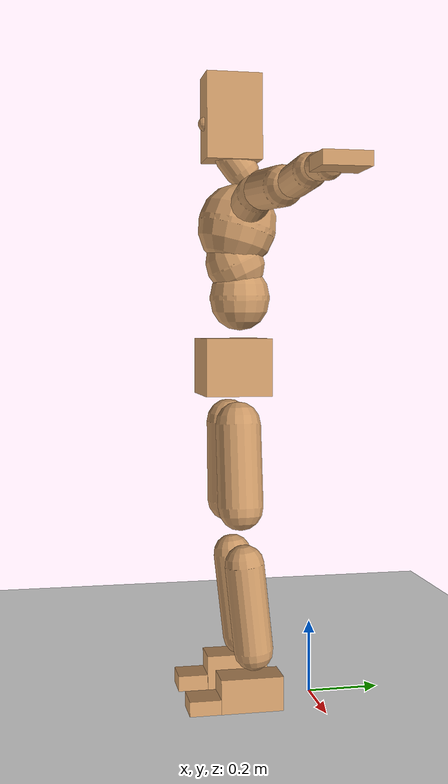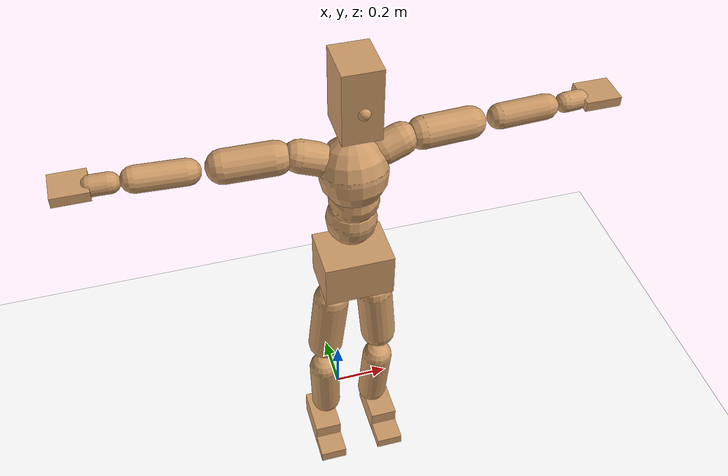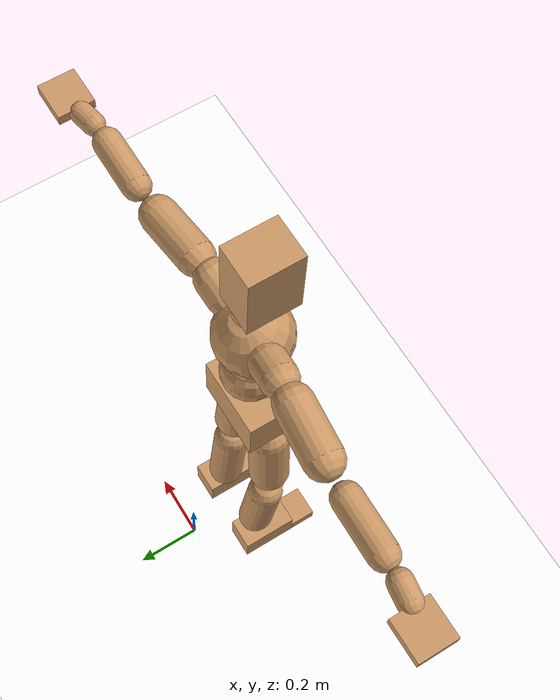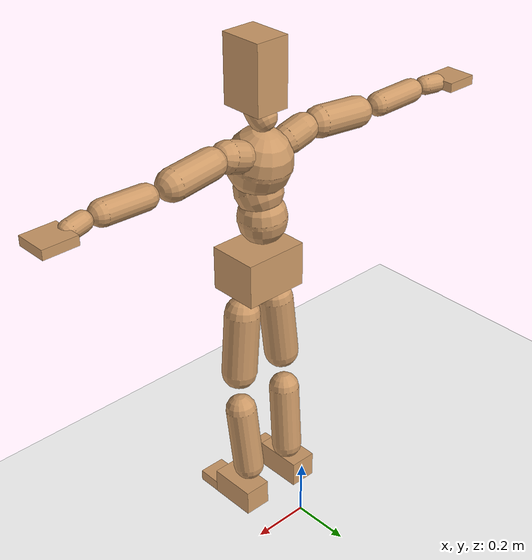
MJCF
<mujoco model="humanoid">
  <option integrator="implicitfast" />

  <visual>
    <global offwidth="1280" offheight="960" />
    <headlight active="1" ambient="0.34 0.34 0.34" diffuse="0.5 0.5 0.5" />
  </visual>

  <default>
    <joint damping="2" stiffness="2" armature="0.01" limited="true" solimplimit="0 .99 .01" />
    <geom condim="1" friction="0.7 0.005 0.0001" solimp=".99 .99 .003" solref="0.015 1" margin="0.001" rgba="0.8 0.6 .4 1" />
    <default class="smplcontact">
      <geom condim="3" friction="1. 0.005 0.0001" solref="0.015 1" solimp="0.98 0.98 0.001" priority="1" />
    </default>
    <default class="stiff_medium">
      <joint stiffness="10" />
    </default>
    <default class="stiff_medium_higher">
      <joint stiffness="50" />
    </default>
    <default class="stiff_high">
      <joint stiffness="100" />
    </default>
  </default>

  <asset>
    <texture type="skybox" builtin="gradient" rgb1="0.99 0.99 0.99" rgb2="0.608 0.828 0.892" width="100" />
    <texture builtin="flat" height="1278" mark="cross" markrgb="1 1 1" name="texgeom" random="0.01" rgb1="0.8 0.6 0.4" rgb2="0.8 0.6 0.4" type="cube" width="127" />
    <texture name="texplane" type="2d" builtin="checker" markrgb="1 1 1" rgb1="0.756 0.772 0.76" rgb2="0.6 0.6 0.6" width="100" height="100" />
    <material name="MatPlane" reflectance="0.5" texture="texplane" texrepeat="1 1" texuniform="true" />
    <material name="geom" texture="texgeom" texuniform="true" />
  </asset>

  <worldbody>
    <light name="tracking_light" pos="0 0 7" dir="0 0 -1" directional="true" cutoff="100" exponent="1" diffuse="1 1 1" specular="0.1 0.1 0.1" mode="trackcom" />
    <camera name="back" pos="0 3 2.4" xyaxes="-1 0 0 0 -1 2" mode="trackcom" />
    <camera name="side" pos="-3 0 2.4" xyaxes="0 -1 0 1 0 2" mode="trackcom" />
    <camera name="front_side" pos="-2.8 -2.8 0.8" xyaxes="0.5 -0.5 0 0.1 0.1 1" mode="trackcom" />
    <geom condim="3" name="floor" pos="0 0 0" rgba="1 1 1 1" size="100 100 .2" type="plane" material="MatPlane" />
    <body name="Pelvis" pos="-0.0018 -0.2233 0.9367" euler="90 0 0">
      <site name="Pelvis" size="0.01" />
      <freejoint name="Pelvis" />
      <geom type="box" pos="-0.0000 -0.0121 -0.0055" size="0.114917 0.077615 0.089225" quat="1.0000 0.0000 0.0000 0.0000" density="3165.830099" name="Pelvis" />
      <body name="L_Hip" pos="0.0695 -0.0914 -0.0068">
        <joint name="L_Hip_x" type="hinge" pos="0 0 0" axis="1 0 0" stiffness="10.0" range="-160.0 22.92" class="stiff_medium" damping="15.0" armature="0.010000000000000002"/>
        <joint name="L_Hip_y" type="hinge" pos="0 0 0" axis="0 1 0" stiffness="10.0" range="-70.0 70.0" class="stiff_medium" damping="10.000000000000002" armature="0.010000000000000005"/>
        <joint name="L_Hip_z" type="hinge" pos="0 0 0" axis="0 0 1" stiffness="10.0" range="-28.65 90.0" class="stiff_medium" damping="10.0" armature="0.01"/>
        <geom type="capsule" density="2040.816327" fromto="0.0069 -0.075 -0.0009 0.0274 -0.3002 -0.0036" size="0.0615" name="L_Hip" />
        <body name="L_Knee" pos="0.0343 -0.3752 -0.0045">
          <joint name="L_Knee_x" type="hinge" pos="0 0 0" axis="1 0 0" range="-5.16 171.89" damping="8.000000000000004" armature="0.010000000000000009" stiffness="2.0"/>
          <joint name="L_Knee_y" type="hinge" pos="0 0 0" axis="0 1 0" range="-4.58 6.88" damping="8.000000000000004" armature="0.01000000000000001" stiffness="2.0"/>
          <joint name="L_Knee_z" type="hinge" pos="0 0 0" axis="0 0 1" range="-6.88 4.58" damping="8.0" armature="0.01" stiffness="2.0"/>
          <geom type="capsule" density="1234.567901" fromto="-0.0027 -0.0796 -0.0087 -0.0109 -0.3184 -0.035" size="0.0541" name="L_Knee" />
          <body name="L_Ankle" pos="-0.0136 -0.398 -0.0437">
            <joint name="L_Ankle_x" type="hinge" pos="0 0 0" axis="1 0 0" range="-45.84 45.84" class="stiff_medium" damping="6.000000000000041" armature="0.010000000000000137" stiffness="10.0"/>
            <joint name="L_Ankle_y" type="hinge" pos="0 0 0" axis="0 1 0" range="-74.48 22.92" class="stiff_medium" damping="3.000000000000001" armature="0.010000000000000005" stiffness="10.0"/>
            <joint name="L_Ankle_z" type="hinge" pos="0 0 0" axis="0 0 1" range="-4.58 4.58" class="stiff_medium" damping="5.999999999999931" armature="0.009999999999999771" stiffness="10.0"/>
            <geom type="box" pos="0.0233 -0.0239 0.0242" size="0.0483 0.0464 0.085" quat="1.0000 0.0000 0.0000 0.0000" density="449.071558" name="L_Ankle" class="smplcontact" />
            <body name="L_Toe" pos="0.0264 -0.0558 0.1193">
              <joint name="L_Toe_x" type="hinge" pos="0 0 0" axis="1 0 0" range="-91.67 22.92" armature="0.009999999999999216" damping="1.9999999999999214" stiffness="2.0"/>
              <joint name="L_Toe_y" type="hinge" pos="0 0 0" axis="0 1 0" range="-4.58 4.58" armature="0.01" damping="2.0" stiffness="2.0"/>
              <joint name="L_Toe_z" type="hinge" pos="0 0 0" axis="0 0 1" range="-4.58 4.58" armature="0.009999999999999912" damping="1.9999999999999911" stiffness="2.0"/>
              <geom type="box" pos="-0.003 0.0055 0.0248" size="0.0478 0.02 0.0496" quat="1.0000 0.0000 0.0000 0.0000" density="423.206892" name="L_Toe" class="smplcontact" />
            </body>
          </body>
        </body>
      </body>
      <body name="R_Hip" pos="-0.0677 -0.0905 -0.0043">
        <joint name="R_Hip_x" type="hinge" pos="0 0 0" axis="1 0 0" stiffness="10.0" range="-160.0 22.92" class="stiff_medium" damping="15.0" armature="0.010000000000000002"/>
        <joint name="R_Hip_y" type="hinge" pos="0 0 0" axis="0 1 0" stiffness="10.0" range="-70.0 70.0" class="stiff_medium" damping="10.000000000000002" armature="0.010000000000000005"/>
        <joint name="R_Hip_z" type="hinge" pos="0 0 0" axis="0 0 1" stiffness="10.0" range="-90.0 28.65" class="stiff_medium" damping="10.0" armature="0.01"/>
        <geom type="capsule" density="2040.816327" fromto="-0.0077 -0.0765 -0.0018 -0.0306 -0.3061 -0.0071" size="0.0606" name="R_Hip" />
        <body name="R_Knee" pos="-0.0383 -0.3826 -0.0089">
          <joint name="R_Knee_x" type="hinge" pos="0 0 0" axis="1 0 0" range="-5.16 171.89" damping="8.000000000000004" armature="0.010000000000000009" stiffness="2.0"/>
          <joint name="R_Knee_y" type="hinge" pos="0 0 0" axis="0 1 0" range="-6.88 4.58" damping="8.000000000000004" armature="0.01000000000000001" stiffness="2.0"/>
          <joint name="R_Knee_z" type="hinge" pos="0 0 0" axis="0 0 1" range="-4.58 6.88" damping="8.0" armature="0.01" stiffness="2.0"/>
          <geom type="capsule" density="1234.567901" fromto="0.0032 -0.0797 -0.0085 0.0126 -0.3187 -0.0338" size="0.0541" name="R_Knee" />
          <body name="R_Ankle" pos="0.0158 -0.3984 -0.0423">
            <joint name="R_Ankle_x" type="hinge" pos="0 0 0" axis="1 0 0" range="-45.84 45.84" class="stiff_medium" damping="6.000000000000041" armature="0.010000000000000137" stiffness="10.0"/>
            <joint name="R_Ankle_y" type="hinge" pos="0 0 0" axis="0 1 0" range="-22.92 74.48" class="stiff_medium" damping="3.000000000000001" armature="0.010000000000000005" stiffness="10.0"/>
            <joint name="R_Ankle_z" type="hinge" pos="0 0 0" axis="0 0 1" range="-4.58 4.58" class="stiff_medium" damping="5.999999999999931" armature="0.009999999999999771" stiffness="10.0"/>
            <geom type="box" pos="-0.0212 -0.0174 0.0256" size="0.0483 0.0478 0.0865" quat="1.0000 0.0000 0.0000 0.0000" density="434.700981" name="R_Ankle" class="smplcontact" />
            <body name="R_Toe" pos="-0.0254 -0.0481 0.1233">
              <joint name="R_Toe_x" type="hinge" pos="0 0 0" axis="1 0 0" range="-91.67 22.92" armature="0.009999999999999216" damping="1.9999999999999214" stiffness="2.0"/>
              <joint name="R_Toe_y" type="hinge" pos="0 0 0" axis="0 1 0" range="-4.58 4.58" armature="0.01" damping="2.0" stiffness="2.0"/>
              <joint name="R_Toe_z" type="hinge" pos="0 0 0" axis="0 0 1" range="-4.58 4.58" armature="0.009999999999999912" damping="1.9999999999999911" stiffness="2.0"/>
              <geom type="box" pos="0.0042 0.0045 0.0227" size="0.0479 0.0216 0.0493" quat="1.0000 0.0000 0.0000 0.0000" density="407.384095" name="R_Toe" class="smplcontact" />
            </body>
          </body>
        </body>
      </body>
      <body name="Torso" pos="-0.0025 0.109 -0.0267">
        <joint name="Torso_x" type="hinge" pos="0 0 0" axis="1 0 0" range="-25.78 57.3" class="stiff_medium" damping="16.221280668649804" armature="0.010705129463158656" stiffness="10.924355777777777"/>
        <joint name="Torso_y" type="hinge" pos="0 0 0" axis="0 1 0" range="-57.3 57.3" class="stiff_high" damping="21.112875085438564" armature="0.010151258780532768" stiffness="109.77788666666663"/>
        <joint name="Torso_z" type="hinge" pos="0 0 0" axis="0 0 1" range="-34.38 34.38" class="stiff_high" damping="21.605047180556255" armature="0.010477498501118955" stiffness="111.37631363636365"/>
        <geom type="capsule" density="2040.816327" fromto="0.0025 0.0608 0.0005 0.003 0.0743 0.0006" size="0.0826675" name="Torso" />
        <body name="Spine" pos="0.0055 0.1352 0.0011">
          <joint name="Spine_x" type="hinge" pos="0 0 0" axis="1 0 0" stiffness="10.764557777777776" range="-25.78 57.3" class="stiff_medium" damping="15.947002230419049" armature="0.010499760639885508"/>
          <joint name="Spine_y" type="hinge" pos="0 0 0" axis="0 1 0" stiffness="10.778920444444445" range="-57.3 57.3" class="stiff_high" damping="8.357280193829762" armature="0.010124525659561987"/>
          <joint name="Spine_z" type="hinge" pos="0 0 0" axis="0 0 1" stiffness="21.397444888888888" range="-34.38 34.38" class="stiff_high" damping="12.557495934686312" armature="0.010235561676256997"/>
          <geom type="capsule" density="2040.816327" fromto="0.0007 0.0238 0.0114 0.0008 0.0291 0.014" size="0.0811625" name="Spine" />
          <body name="Chest" pos="0.0015 0.0529 0.0254">
            <joint name="Chest_x" type="hinge" pos="0 0 0" axis="1 0 0" stiffness="10.558546" range="-25.78 57.3" class="stiff_medium" damping="15.72236069565533" armature="0.010405162724500877"/>
            <joint name="Chest_y" type="hinge" pos="0 0 0" axis="0 1 0" stiffness="10.295017111111113" range="-57.3 57.3" class="stiff_high" damping="8.15947151725251" armature="0.010104550871903172"/>
            <joint name="Chest_z" type="hinge" pos="0 0 0" axis="0 0 1" stiffness="21.209089777777777" range="-34.38 34.38" class="stiff_high" damping="12.450840697354153" armature="0.01015179469531287"/>
            <geom type="capsule" density="2040.816327" fromto="-0.0009 0.0682 -0.0173 -0.001 0.0833 -0.0212" size="0.107715" name="Chest" />
            <body name="Neck" pos="-0.0028 0.2139 -0.0429">
              <joint name="Neck_x" type="hinge" pos="0 0 0" axis="1 0 0" range="-28.65 57.3" class="stiff_medium_higher" damping="10.097803249362805" armature="0.01003951777011148" stiffness="50.782135555555556"/>
              <joint name="Neck_y" type="hinge" pos="0 0 0" axis="0 1 0" range="-40.11 40.11" class="stiff_medium_higher" damping="10.14037987029112" armature="0.010156940520105448" stiffness="50.619231111111105"/>
              <joint name="Neck_z" type="hinge" pos="0 0 0" axis="0 0 1" range="-40.11 40.11" class="stiff_medium_higher" damping="10.046998121558895" armature="0.010032785488113916" stiffness="50.30615444444445"/>
              <geom type="capsule" density="1000" fromto="0.001 0.013 0.0103 0.0041 0.052 0.0411" size="0.04687" name="Neck" />
              <body name="Head" pos="0.0052 0.065 0.0513">
                <joint name="Head_x" type="hinge" pos="0 0 0" axis="1 0 0" range="-28.65 57.3" class="stiff_medium_higher" damping="2.0000000000000027" armature="0.010000000000000026" stiffness="50.0"/>
                <joint name="Head_y" type="hinge" pos="0 0 0" axis="0 1 0" range="-40.11 40.11" class="stiff_medium_higher" damping="2.0" armature="0.01" stiffness="50.0"/>
                <joint name="Head_z" type="hinge" pos="0 0 0" axis="0 0 1" range="-40.11 40.11" class="stiff_medium_higher" damping="2.000000000000005" armature="0.010000000000000049" stiffness="50.0"/>
                <geom type="box" pos="-0.0042 0.0876 -0.0116" size="0.0606 0.1154 0.076" quat="1.0000 0.0000 0.0000 0.0000" density="1018.069894" name="Head" />
                <geom type="capsule" name="nose" size="0.02 0.01" pos="0 0.07 0.05" quat="1 0 0 0" mass="0" contype="0" conaffinity="0" />
              </body>
            </body>
            <body name="L_Thorax" pos="0.0788 0.1217 -0.0341">
              <joint name="L_Thorax_x" type="hinge" pos="0 0 0" axis="1 0 0" range="-10.89 4.58" class="stiff_medium_higher" damping="20.000000000000174" armature="0.010000000000000175" stiffness="50.0"/>
              <joint name="L_Thorax_y" type="hinge" pos="0 0 0" axis="0 1 0" range="-28.65 17.19" class="stiff_medium_higher" damping="20.0" armature="0.01" stiffness="50.0"/>
              <joint name="L_Thorax_z" type="hinge" pos="0 0 0" axis="0 0 1" range="-31.51 40.11" class="stiff_medium_higher" damping="20.0" armature="0.01" stiffness="50.0"/>
              <geom type="capsule" density="1000" fromto="0.0182 0.0061 -0.0018 0.0728 0.0244 -0.0071" size="0.0521" name="L_Thorax" />
              <body name="L_Shoulder" pos="0.091 0.0305 -0.0089">
                <joint name="L_Shoulder_x" type="hinge" pos="0 0 0" axis="1 0 0" range="-97.4 97.4" class="stiff_medium" damping="6.000000000000076" armature="0.010000000000000253" stiffness="10.0"/>
                <joint name="L_Shoulder_y" type="hinge" pos="0 0 0" axis="0 1 0" range="-108.86 80.21" class="stiff_medium" damping="6.0" armature="0.01" stiffness="10.0"/>
                <joint name="L_Shoulder_z" type="hinge" pos="0 0 0" axis="0 0 1" range="-97.4 85.94" class="stiff_medium" damping="6.000000000000002" armature="0.010000000000000005" stiffness="10.0"/>
                <geom type="capsule" density="1000" fromto="0.0519 -0.0026 -0.0055 0.2077 -0.0102 -0.022" size="0.0517" name="L_Shoulder" />
                <body name="L_Elbow" pos="0.2596 -0.0128 -0.0275">
                  <joint name="L_Elbow_x" type="hinge" pos="0 0 0" axis="1 0 0" range="-17.19 4.58" damping="5.000000000000088" armature="0.010000000000000354" stiffness="2.0"/>
                  <joint name="L_Elbow_y" type="hinge" pos="0 0 0" axis="0 1 0" range="-180.0 17.19" damping="5.0000000000000036" armature="0.010000000000000014" stiffness="2.0"/>
                  <joint name="L_Elbow_z" type="hinge" pos="0 0 0" axis="0 0 1" range="-100.84 4.58" damping="5.000000000000002" armature="0.010000000000000009" stiffness="2.0"/>
                  <geom type="capsule" density="1000" fromto="0.0498 0.0018 -0.0002 0.1994 0.0072 -0.0009" size="0.0405" name="L_Elbow" />
                  <body name="L_Wrist" pos="0.2492 0.009 -0.0012">
                    <joint name="L_Wrist_x" type="hinge" pos="0 0 0" axis="1 0 0" range="-180.0 22.92" armature="0.010000000000000318" damping="2.0000000000000315" stiffness="2.0"/>
                    <joint name="L_Wrist_y" type="hinge" pos="0 0 0" axis="0 1 0" range="-17.19 17.19" armature="0.010000000000000077" damping="2.0000000000000075" stiffness="2.0"/>
                    <joint name="L_Wrist_z" type="hinge" pos="0 0 0" axis="0 0 1" range="-22.92 22.92" armature="0.010000000000000071" damping="2.000000000000007" stiffness="2.0"/>
                    <geom type="capsule" density="1000" fromto="0.0168 -0.0016 -0.003 0.0672 -0.0065 -0.012" size="0.0318" name="L_Wrist" class="smplcontact" />
                    <body name="L_Hand" pos="0.084 -0.0082 -0.0149">
                      <joint name="L_Hand_x" type="hinge" pos="0 0 0" axis="1 0 0" range="-17.19 17.19" armature="0.009999999999999825" damping="1.9999999999999825" stiffness="2.0"/>
                      <joint name="L_Hand_y" type="hinge" pos="0 0 0" axis="0 1 0" range="-51.57 51.57" armature="0.009999999999999974" damping="1.9999999999999973" stiffness="2.0"/>
                      <joint name="L_Hand_z" type="hinge" pos="0 0 0" axis="0 0 1" range="-91.67 91.67" armature="0.010000000000000026" damping="2.0000000000000027" stiffness="2.0"/>
                      <geom type="box" pos="0.0493 0.001 -0.0058" size="0.0585 0.0158 0.0538" quat="1.0000 0.0000 0.0000 0.0000" density="400.552564" name="L_Hand" class="smplcontact" />
                    </body>
                  </body>
                </body>
              </body>
            </body>
            <body name="R_Thorax" pos="-0.0818 0.1188 -0.0386">
              <joint name="R_Thorax_x" type="hinge" pos="0 0 0" axis="1 0 0" range="-10.89 4.58" class="stiff_medium_higher" damping="20.000000000000174" armature="0.010000000000000175" stiffness="50.0"/>
              <joint name="R_Thorax_y" type="hinge" pos="0 0 0" axis="0 1 0" range="-17.19 28.65" class="stiff_medium_higher" damping="20.0" armature="0.01" stiffness="50.0"/>
              <joint name="R_Thorax_z" type="hinge" pos="0 0 0" axis="0 0 1" range="-40.11 31.51" class="stiff_medium_higher" damping="20.0" armature="0.01" stiffness="50.0"/>
              <geom type="capsule" density="1000" fromto="-0.0192 0.0065 -0.0018 -0.0768 0.026 -0.0073" size="0.0511" name="R_Thorax" />
              <body name="R_Shoulder" pos="-0.096 0.0326 -0.0091">
                <joint name="R_Shoulder_x" type="hinge" pos="0 0 0" axis="1 0 0" range="-97.4 97.4" class="stiff_medium" damping="6.000000000000076" armature="0.010000000000000253" stiffness="10.0"/>
                <joint name="R_Shoulder_y" type="hinge" pos="0 0 0" axis="0 1 0" range="-80.21 108.86" class="stiff_medium" damping="6.0" armature="0.01" stiffness="10.0"/>
                <joint name="R_Shoulder_z" type="hinge" pos="0 0 0" axis="0 0 1" range="-85.94 97.4" class="stiff_medium" damping="6.000000000000002" armature="0.010000000000000005" stiffness="10.0"/>
                <geom type="capsule" density="1000" fromto="-0.0507 -0.0027 -0.0043 -0.203 -0.0107 -0.0171" size="0.0531" name="R_Shoulder" />
                <body name="R_Elbow" pos="-0.2537 -0.0133 -0.0214">
                  <joint name="R_Elbow_x" type="hinge" pos="0 0 0" axis="1 0 0" range="-17.19 4.58" damping="5.000000000000088" armature="0.010000000000000354" stiffness="2.0"/>
                  <joint name="R_Elbow_y" type="hinge" pos="0 0 0" axis="0 1 0" range="-17.19 180.0" damping="5.0000000000000036" armature="0.010000000000000014" stiffness="2.0"/>
                  <joint name="R_Elbow_z" type="hinge" pos="0 0 0" axis="0 0 1" range="-4.58 100.84" damping="5.000000000000002" armature="0.010000000000000009" stiffness="2.0"/>
                  <geom type="capsule" density="1000" fromto="-0.0511 0.0016 -0.0011 -0.2042 0.0062 -0.0044" size="0.0408" name="R_Elbow" />
                  <body name="R_Wrist" pos="-0.2553 0.0078 -0.0056">
                    <joint name="R_Wrist_x" type="hinge" pos="0 0 0" axis="1 0 0" range="-180.0 22.92" armature="0.010000000000000318" damping="2.0000000000000315" stiffness="2.0"/>
                    <joint name="R_Wrist_y" type="hinge" pos="0 0 0" axis="0 1 0" range="-17.19 17.19" armature="0.010000000000000077" damping="2.0000000000000075" stiffness="2.0"/>
                    <joint name="R_Wrist_z" type="hinge" pos="0 0 0" axis="0 0 1" range="-22.92 22.92" armature="0.010000000000000071" damping="2.000000000000007" stiffness="2.0"/>
                    <geom type="capsule" density="1000" fromto="-0.0169 -0.0012 -0.0021 -0.0677 -0.0049 -0.0083" size="0.0326" name="R_Wrist" class="smplcontact" />
                    <body name="R_Hand" pos="-0.0846 -0.0061 -0.0103">
                      <joint name="R_Hand_x" type="hinge" pos="0 0 0" axis="1 0 0" range="-17.19 17.19" armature="0.009999999999999825" damping="1.9999999999999825" stiffness="2.0"/>
                      <joint name="R_Hand_y" type="hinge" pos="0 0 0" axis="0 1 0" range="-51.57 51.57" armature="0.009999999999999974" damping="1.9999999999999973" stiffness="2.0"/>
                      <joint name="R_Hand_z" type="hinge" pos="0 0 0" axis="0 0 1" range="-91.67 91.67" armature="0.010000000000000026" damping="2.0000000000000027" stiffness="2.0"/>
                      <geom type="box" pos="-0.0462 -0.0009 -0.0079" size="0.0569 0.0164 0.0546" quat="1.0000 0.0000 0.0000 0.0000" density="403.679611" name="R_Hand" class="smplcontact" />
                    </body>
                  </body>
                </body>
              </body>
            </body>
          </body>
        </body>
      </body>
    </body>
  </worldbody>
  <actuator>
    <general name="L_Hip_x" joint="L_Hip_x" biastype="affine" gainprm="287.33006409732246" biasprm="-215.3247604770444 -180.0 -2.0" ctrllimited="true" ctrlrange="-1 1" forcerange="-360.0 360.0" />
    <general name="L_Hip_y" joint="L_Hip_y" biastype="affine" gainprm="219.9114857512855" biasprm="0.0 -180.0 -2.0000000000000004" ctrllimited="true" ctrlrange="-1 1" forcerange="-360.0 360.0" />
    <general name="L_Hip_z" joint="L_Hip_z" biastype="affine" gainprm="186.3749841742145" biasprm="96.3683546488669 -180.0 -2.0" ctrllimited="true" ctrlrange="-1 1" forcerange="-360.0 360.0" />
    <general name="L_Knee_x" joint="L_Knee_x" biastype="affine" gainprm="278.10948965903646" biasprm="261.8988715665131 -180.0 -2.000000000000001" ctrllimited="true" ctrlrange="-1 1" forcerange="-360.0 360.0" />
    <general name="L_Knee_y" joint="L_Knee_y" biastype="affine" gainprm="18.001325905069514" biasprm="3.612831551628262 -180.0 -2.000000000000001" ctrllimited="true" ctrlrange="-1 1" forcerange="-360.0 360.0" />
    <general name="L_Knee_z" joint="L_Knee_z" biastype="affine" gainprm="18.001325905069514" biasprm="-3.612831551628262 -180.0 -2.0" ctrllimited="true" ctrlrange="-1 1" forcerange="-360.0 360.0" />
    <general name="L_Ankle_x" joint="L_Ankle_x" biastype="affine" gainprm="72.00530362027807" biasprm="0.0 -90.0 -2.0000000000000138" ctrllimited="true" ctrlrange="-1 1" forcerange="-180.0 180.0" />
    <general name="L_Ankle_y" joint="L_Ankle_y" biastype="affine" gainprm="76.49778111491148" biasprm="-40.49512930477244 -90.0 -2.0000000000000004" ctrllimited="true" ctrlrange="-1 1" forcerange="-180.0 180.0" />
    <general name="L_Ankle_z" joint="L_Ankle_z" biastype="affine" gainprm="7.1942471767206255" biasprm="0.0 -90.0 -1.999999999999977" ctrllimited="true" ctrlrange="-1 1" forcerange="-180.0 180.0" />
    <general name="L_Toe_x" joint="L_Toe_x" biastype="affine" gainprm="71.99902043497087" biasprm="-43.19689898685965 -72.0 -0.7999999999999686" ctrllimited="true" ctrlrange="-1 1" forcerange="-144.0 144.0" />
    <general name="L_Toe_y" joint="L_Toe_y" biastype="affine" gainprm="5.755397741376501" biasprm="0.0 -72.0 -0.8" ctrllimited="true" ctrlrange="-1 1" forcerange="-144.0 144.0" />
    <general name="L_Toe_z" joint="L_Toe_z" biastype="affine" gainprm="5.755397741376501" biasprm="0.0 -72.0 -0.7999999999999965" ctrllimited="true" ctrlrange="-1 1" forcerange="-144.0 144.0" />
    <general name="R_Hip_x" joint="R_Hip_x" biastype="affine" gainprm="287.33006409732246" biasprm="-215.3247604770444 -180.0 -2.0" ctrllimited="true" ctrlrange="-1 1" forcerange="-360.0 360.0" />
    <general name="R_Hip_y" joint="R_Hip_y" biastype="affine" gainprm="219.9114857512855" biasprm="0.0 -180.0 -2.0000000000000004" ctrllimited="true" ctrlrange="-1 1" forcerange="-360.0 360.0" />
    <general name="R_Hip_z" joint="R_Hip_z" biastype="affine" gainprm="186.3749841742145" biasprm="-96.3683546488669 -180.0 -2.0" ctrllimited="true" ctrlrange="-1 1" forcerange="-360.0 360.0" />
    <general name="R_Knee_x" joint="R_Knee_x" biastype="affine" gainprm="278.10948965903646" biasprm="261.8988715665131 -180.0 -2.000000000000001" ctrllimited="true" ctrlrange="-1 1" forcerange="-360.0 360.0" />
    <general name="R_Knee_y" joint="R_Knee_y" biastype="affine" gainprm="18.001325905069514" biasprm="-3.612831551628262 -180.0 -2.000000000000001" ctrllimited="true" ctrlrange="-1 1" forcerange="-360.0 360.0" />
    <general name="R_Knee_z" joint="R_Knee_z" biastype="affine" gainprm="18.001325905069514" biasprm="3.612831551628262 -180.0 -2.0" ctrllimited="true" ctrlrange="-1 1" forcerange="-360.0 360.0" />
    <general name="R_Ankle_x" joint="R_Ankle_x" biastype="affine" gainprm="72.00530362027807" biasprm="0.0 -90.0 -2.0000000000000138" ctrllimited="true" ctrlrange="-1 1" forcerange="-180.0 180.0" />
    <general name="R_Ankle_y" joint="R_Ankle_y" biastype="affine" gainprm="76.49778111491148" biasprm="40.49512930477244 -90.0 -2.0000000000000004" ctrllimited="true" ctrlrange="-1 1" forcerange="-180.0 180.0" />
    <general name="R_Ankle_z" joint="R_Ankle_z" biastype="affine" gainprm="7.1942471767206255" biasprm="0.0 -90.0 -1.999999999999977" ctrllimited="true" ctrlrange="-1 1" forcerange="-180.0 180.0" />
    <general name="R_Toe_x" joint="R_Toe_x" biastype="affine" gainprm="71.99902043497087" biasprm="-43.19689898685965 -72.0 -0.7999999999999686" ctrllimited="true" ctrlrange="-1 1" forcerange="-144.0 144.0" />
    <general name="R_Toe_y" joint="R_Toe_y" biastype="affine" gainprm="5.755397741376501" biasprm="0.0 -72.0 -0.8" ctrllimited="true" ctrlrange="-1 1" forcerange="-144.0 144.0" />
    <general name="R_Toe_z" joint="R_Toe_z" biastype="affine" gainprm="5.755397741376501" biasprm="0.0 -72.0 -0.7999999999999965" ctrllimited="true" ctrlrange="-1 1" forcerange="-144.0 144.0" />
    <general name="Torso_x" joint="Torso_x" biastype="affine" gainprm="190.08635241146447" biasprm="72.11749913347808 -262.18453866666664 -4.325674844973281" ctrllimited="true" ctrlrange="-1 1" forcerange="-393.27680799999996 393.27680799999996" />
    <general name="Torso_y" joint="Torso_y" biastype="affine" gainprm="263.4863353408602" biasprm="0.0 -263.46692799999994 -4.2225750170877125" ctrllimited="true" ctrlrange="-1 1" forcerange="-395.2003919999999 395.2003919999999" />
    <general name="Torso_z" joint="Torso_z" biastype="affine" gainprm="160.3937055898736" biasprm="0.0 -267.30315272727273 -4.321009436111251" ctrllimited="true" ctrlrange="-1 1" forcerange="-400.9547290909091 400.9547290909091" />
    <general name="Spine_x" joint="Spine_x" biastype="affine" gainprm="187.3058297371264" biasprm="71.06258730517841 -258.34938666666665 -4.252533928111746" ctrllimited="true" ctrlrange="-1 1" forcerange="-387.52407999999997 387.52407999999997" />
    <general name="Spine_y" joint="Spine_y" biastype="affine" gainprm="258.7131464336816" biasprm="0.0 -258.6940906666667 -4.178640096914881" ctrllimited="true" ctrlrange="-1 1" forcerange="-388.041136 388.041136" />
    <general name="Spine_z" joint="Spine_z" biastype="affine" gainprm="154.07295159226115" biasprm="0.0 -256.76933866666667 -4.18583197822877" ctrllimited="true" ctrlrange="-1 1" forcerange="-385.154008 385.154008" />
    <general name="Chest_x" joint="Chest_x" biastype="affine" gainprm="183.72117649183045" biasprm="69.70259368106035 -253.405104 -4.1926295188414215" ctrllimited="true" ctrlrange="-1 1" forcerange="-380.107656 380.107656" />
    <general name="Chest_y" joint="Chest_y" biastype="affine" gainprm="247.09861095383786" biasprm="0.0 -247.08041066666672 -4.079735758626255" ctrllimited="true" ctrlrange="-1 1" forcerange="-370.6206160000001 370.6206160000001" />
    <general name="Chest_z" joint="Chest_z" biastype="affine" gainprm="152.7166948958625" biasprm="0.0 -254.50907733333335 -4.150280232451384" ctrllimited="true" ctrlrange="-1 1" forcerange="-381.763616 381.763616" />
    <general name="Neck_x" joint="Neck_x" biastype="affine" gainprm="27.424373168729215" biasprm="9.141457722909738 -36.5631376 -0.8078242599490244" ctrllimited="true" ctrlrange="-1 1" forcerange="-73.1262752 73.1262752" />
    <general name="Neck_y" joint="Neck_y" biastype="affine" gainprm="25.51397173626406" biasprm="0.0 -36.44584639999999 -0.8112303896232897" ctrllimited="true" ctrlrange="-1 1" forcerange="-72.89169279999999 72.89169279999999" />
    <general name="Neck_z" joint="Neck_z" biastype="affine" gainprm="25.356169473185762" biasprm="0.0 -36.22043120000001 -0.8037598497247116" ctrllimited="true" ctrlrange="-1 1" forcerange="-72.44086240000001 72.44086240000001" />
    <general name="Head_x" joint="Head_x" biastype="affine" gainprm="18.001325905069514" biasprm="6.000441968356505 -24.0 -0.8000000000000012" ctrllimited="true" ctrlrange="-1 1" forcerange="-48.0 48.0" />
    <general name="Head_y" joint="Head_y" biastype="affine" gainprm="16.801237511398213" biasprm="0.0 -24.0 -0.8" ctrllimited="true" ctrlrange="-1 1" forcerange="-48.0 48.0" />
    <general name="Head_z" joint="Head_z" biastype="affine" gainprm="16.801237511398213" biasprm="0.0 -24.0 -0.800000000000002" ctrllimited="true" ctrlrange="-1 1" forcerange="-48.0 48.0" />
    <general name="L_Thorax_x" joint="L_Thorax_x" biastype="affine" gainprm="16.200146117011364" biasprm="-6.6078165480505335 -120.0 -1.6000000000000139" ctrllimited="true" ctrlrange="-1 1" forcerange="-240.0 240.0" />
    <general name="L_Thorax_y" joint="L_Thorax_y" biastype="affine" gainprm="48.00353574685204" biasprm="-12.00088393671301 -120.0 -1.6" ctrllimited="true" ctrlrange="-1 1" forcerange="-240.0 240.0" />
    <general name="L_Thorax_z" joint="L_Thorax_z" biastype="affine" gainprm="75.00028861670033" biasprm="9.00589894029074 -120.0 -1.6" ctrllimited="true" ctrlrange="-1 1" forcerange="-240.0 240.0" />
    <general name="L_Shoulder_x" joint="L_Shoulder_x" biastype="affine" gainprm="81.5976331892389" biasprm="0.0 -48.0 -1.6000000000000203" ctrllimited="true" ctrlrange="-1 1" forcerange="-96.0 96.0" />
    <general name="L_Shoulder_y" joint="L_Shoulder_y" biastype="affine" gainprm="79.19745640189629" biasprm="-12.00088393671301 -48.0 -1.6" ctrllimited="true" ctrlrange="-1 1" forcerange="-96.0 96.0" />
    <general name="L_Shoulder_z" joint="L_Shoulder_z" biastype="affine" gainprm="76.79727961455369" biasprm="-4.800353574685214 -48.0 -1.6000000000000005" ctrllimited="true" ctrlrange="-1 1" forcerange="-96.0 96.0" />
    <general name="L_Elbow_x" joint="L_Elbow_x" biastype="affine" gainprm="13.67849441372996" biasprm="-7.923096672353461 -72.0 -0.800000000000014" ctrllimited="true" ctrlrange="-1 1" forcerange="-144.0 144.0" />
    <general name="L_Elbow_y" joint="L_Elbow_y" biastype="affine" gainprm="123.89813107227425" biasprm="-102.29653998619085 -72.0 -0.8000000000000006" ctrllimited="true" ctrlrange="-1 1" forcerange="-144.0 144.0" />
    <general name="L_Elbow_z" joint="L_Elbow_z" biastype="affine" gainprm="66.23733950828719" biasprm="-60.4819417669107 -72.0 -0.8000000000000004" ctrllimited="true" ctrlrange="-1 1" forcerange="-144.0 144.0" />
    <general name="L_Wrist_x" joint="L_Wrist_x" biastype="affine" gainprm="21.24973270888136" biasprm="-16.449379134196157 -12.0 -0.8000000000000127" ctrllimited="true" ctrlrange="-1 1" forcerange="-24.0 24.0" />
    <general name="L_Wrist_y" joint="L_Wrist_y" biastype="affine" gainprm="3.6002651810139037" biasprm="0.0 -12.0 -0.800000000000003" ctrllimited="true" ctrlrange="-1 1" forcerange="-24.0 24.0" />
    <general name="L_Wrist_z" joint="L_Wrist_z" biastype="affine" gainprm="4.800353574685205" biasprm="0.0 -12.0 -0.8000000000000029" ctrllimited="true" ctrlrange="-1 1" forcerange="-24.0 24.0" />
    <general name="L_Hand_x" joint="L_Hand_x" biastype="affine" gainprm="3.6002651810139037" biasprm="0.0 -12.0 -0.799999999999993" ctrllimited="true" ctrlrange="-1 1" forcerange="-24.0 24.0" />
    <general name="L_Hand_y" joint="L_Hand_y" biastype="affine" gainprm="10.800795543041708" biasprm="0.0 -12.0 -0.7999999999999989" ctrllimited="true" ctrlrange="-1 1" forcerange="-24.0 24.0" />
    <general name="L_Hand_z" joint="L_Hand_z" biastype="affine" gainprm="19.199319903638422" biasprm="0.0 -12.0 -0.8000000000000012" ctrllimited="true" ctrlrange="-1 1" forcerange="-24.0 24.0" />
    <general name="R_Thorax_x" joint="R_Thorax_x" biastype="affine" gainprm="16.200146117011364" biasprm="-6.6078165480505335 -120.0 -1.6000000000000139" ctrllimited="true" ctrlrange="-1 1" forcerange="-240.0 240.0" />
    <general name="R_Thorax_y" joint="R_Thorax_y" biastype="affine" gainprm="48.00353574685204" biasprm="12.000883936713002 -120.0 -1.6" ctrllimited="true" ctrlrange="-1 1" forcerange="-240.0 240.0" />
    <general name="R_Thorax_z" joint="R_Thorax_z" biastype="affine" gainprm="75.00028861670033" biasprm="-9.00589894029074 -120.0 -1.6" ctrllimited="true" ctrlrange="-1 1" forcerange="-240.0 240.0" />
    <general name="R_Shoulder_x" joint="R_Shoulder_x" biastype="affine" gainprm="81.5976331892389" biasprm="0.0 -48.0 -1.6000000000000203" ctrllimited="true" ctrlrange="-1 1" forcerange="-96.0 96.0" />
    <general name="R_Shoulder_y" joint="R_Shoulder_y" biastype="affine" gainprm="79.19745640189629" biasprm="12.00088393671301 -48.0 -1.6" ctrllimited="true" ctrlrange="-1 1" forcerange="-96.0 96.0" />
    <general name="R_Shoulder_z" joint="R_Shoulder_z" biastype="affine" gainprm="76.79727961455369" biasprm="4.800353574685204 -48.0 -1.6000000000000005" ctrllimited="true" ctrlrange="-1 1" forcerange="-96.0 96.0" />
    <general name="R_Elbow_x" joint="R_Elbow_x" biastype="affine" gainprm="13.67849441372996" biasprm="-7.923096672353461 -72.0 -0.800000000000014" ctrllimited="true" ctrlrange="-1 1" forcerange="-144.0 144.0" />
    <general name="R_Elbow_y" joint="R_Elbow_y" biastype="affine" gainprm="123.89813107227425" biasprm="102.29653998619085 -72.0 -0.8000000000000006" ctrllimited="true" ctrlrange="-1 1" forcerange="-144.0 144.0" />
    <general name="R_Elbow_z" joint="R_Elbow_z" biastype="affine" gainprm="66.23733950828719" biasprm="60.481941766910694 -72.0 -0.8000000000000004" ctrllimited="true" ctrlrange="-1 1" forcerange="-144.0 144.0" />
    <general name="R_Wrist_x" joint="R_Wrist_x" biastype="affine" gainprm="21.24973270888136" biasprm="-16.449379134196157 -12.0 -0.8000000000000127" ctrllimited="true" ctrlrange="-1 1" forcerange="-24.0 24.0" />
    <general name="R_Wrist_y" joint="R_Wrist_y" biastype="affine" gainprm="3.6002651810139037" biasprm="0.0 -12.0 -0.800000000000003" ctrllimited="true" ctrlrange="-1 1" forcerange="-24.0 24.0" />
    <general name="R_Wrist_z" joint="R_Wrist_z" biastype="affine" gainprm="4.800353574685205" biasprm="0.0 -12.0 -0.8000000000000029" ctrllimited="true" ctrlrange="-1 1" forcerange="-24.0 24.0" />
    <general name="R_Hand_x" joint="R_Hand_x" biastype="affine" gainprm="3.6002651810139037" biasprm="0.0 -12.0 -0.799999999999993" ctrllimited="true" ctrlrange="-1 1" forcerange="-24.0 24.0" />
    <general name="R_Hand_y" joint="R_Hand_y" biastype="affine" gainprm="10.800795543041708" biasprm="0.0 -12.0 -0.7999999999999989" ctrllimited="true" ctrlrange="-1 1" forcerange="-24.0 24.0" />
    <general name="R_Hand_z" joint="R_Hand_z" biastype="affine" gainprm="19.199319903638422" biasprm="0.0 -12.0 -0.8000000000000012" ctrllimited="true" ctrlrange="-1 1" forcerange="-24.0 24.0" />
  </actuator>
  <contact>
    <exclude body1="Torso" body2="Chest" />
    <exclude body1="Head" body2="Chest" />
    <exclude body1="R_Knee" body2="R_Toe" />
    <exclude body1="R_Knee" body2="L_Ankle" />
    <exclude body1="R_Knee" body2="L_Toe" />
    <exclude body1="L_Knee" body2="L_Toe" />
    <exclude body1="L_Knee" body2="R_Ankle" />
    <exclude body1="L_Knee" body2="R_Toe" />
    <exclude body1="L_Shoulder" body2="Chest" />
    <exclude body1="R_Shoulder" body2="Chest" />
  </contact>
  <sensor>
    <framelinvel name="sensor_Pelvis_framelinvel" objtype="xbody" objname="Pelvis" />
    <framelinvel name="sensor_L_Hip_framelinvel" objtype="xbody" objname="L_Hip" />
    <framelinvel name="sensor_L_Knee_framelinvel" objtype="xbody" objname="L_Knee" />
    <framelinvel name="sensor_L_Ankle_framelinvel" objtype="xbody" objname="L_Ankle" />
    <framelinvel name="sensor_L_Toe_framelinvel" objtype="xbody" objname="L_Toe" />
    <framelinvel name="sensor_R_Hip_framelinvel" objtype="xbody" objname="R_Hip" />
    <framelinvel name="sensor_R_Knee_framelinvel" objtype="xbody" objname="R_Knee" />
    <framelinvel name="sensor_R_Ankle_framelinvel" objtype="xbody" objname="R_Ankle" />
    <framelinvel name="sensor_R_Toe_framelinvel" objtype="xbody" objname="R_Toe" />
    <framelinvel name="sensor_Torso_framelinvel" objtype="xbody" objname="Torso" />
    <framelinvel name="sensor_Spine_framelinvel" objtype="xbody" objname="Spine" />
    <framelinvel name="sensor_Chest_framelinvel" objtype="xbody" objname="Chest" />
    <framelinvel name="sensor_Neck_framelinvel" objtype="xbody" objname="Neck" />
    <framelinvel name="sensor_Head_framelinvel" objtype="xbody" objname="Head" />
    <framelinvel name="sensor_L_Thorax_framelinvel" objtype="xbody" objname="L_Thorax" />
    <framelinvel name="sensor_L_Shoulder_framelinvel" objtype="xbody" objname="L_Shoulder" />
    <framelinvel name="sensor_L_Elbow_framelinvel" objtype="xbody" objname="L_Elbow" />
    <framelinvel name="sensor_L_Wrist_framelinvel" objtype="xbody" objname="L_Wrist" />
    <framelinvel name="sensor_L_Hand_framelinvel" objtype="xbody" objname="L_Hand" />
    <framelinvel name="sensor_R_Thorax_framelinvel" objtype="xbody" objname="R_Thorax" />
    <framelinvel name="sensor_R_Shoulder_framelinvel" objtype="xbody" objname="R_Shoulder" />
    <framelinvel name="sensor_R_Elbow_framelinvel" objtype="xbody" objname="R_Elbow" />
    <framelinvel name="sensor_R_Wrist_framelinvel" objtype="xbody" objname="R_Wrist" />
    <framelinvel name="sensor_R_Hand_framelinvel" objtype="xbody" objname="R_Hand" />
    <frameangvel name="sensor_Pelvis_frameangvel" objtype="xbody" objname="Pelvis" />
    <frameangvel name="sensor_L_Hip_frameangvel" objtype="xbody" objname="L_Hip" />
    <frameangvel name="sensor_L_Knee_frameangvel" objtype="xbody" objname="L_Knee" />
    <frameangvel name="sensor_L_Ankle_frameangvel" objtype="xbody" objname="L_Ankle" />
    <frameangvel name="sensor_L_Toe_frameangvel" objtype="xbody" objname="L_Toe" />
    <frameangvel name="sensor_R_Hip_frameangvel" objtype="xbody" objname="R_Hip" />
    <frameangvel name="sensor_R_Knee_frameangvel" objtype="xbody" objname="R_Knee" />
    <frameangvel name="sensor_R_Ankle_frameangvel" objtype="xbody" objname="R_Ankle" />
    <frameangvel name="sensor_R_Toe_frameangvel" objtype="xbody" objname="R_Toe" />
    <frameangvel name="sensor_Torso_frameangvel" objtype="xbody" objname="Torso" />
    <frameangvel name="sensor_Spine_frameangvel" objtype="xbody" objname="Spine" />
    <frameangvel name="sensor_Chest_frameangvel" objtype="xbody" objname="Chest" />
    <frameangvel name="sensor_Neck_frameangvel" objtype="xbody" objname="Neck" />
    <frameangvel name="sensor_Head_frameangvel" objtype="xbody" objname="Head" />
    <frameangvel name="sensor_L_Thorax_frameangvel" objtype="xbody" objname="L_Thorax" />
    <frameangvel name="sensor_L_Shoulder_frameangvel" objtype="xbody" objname="L_Shoulder" />
    <frameangvel name="sensor_L_Elbow_frameangvel" objtype="xbody" objname="L_Elbow" />
    <frameangvel name="sensor_L_Wrist_frameangvel" objtype="xbody" objname="L_Wrist" />
    <frameangvel name="sensor_L_Hand_frameangvel" objtype="xbody" objname="L_Hand" />
    <frameangvel name="sensor_R_Thorax_frameangvel" objtype="xbody" objname="R_Thorax" />
    <frameangvel name="sensor_R_Shoulder_frameangvel" objtype="xbody" objname="R_Shoulder" />
    <frameangvel name="sensor_R_Elbow_frameangvel" objtype="xbody" objname="R_Elbow" />
    <frameangvel name="sensor_R_Wrist_frameangvel" objtype="xbody" objname="R_Wrist" />
    <frameangvel name="sensor_R_Hand_frameangvel" objtype="xbody" objname="R_Hand" />
    <subtreelinvel name="Chest_subtreelinvel" body="Chest" />
    <gyro name="Pelvis_gyro" site="Pelvis" />
  </sensor>
</mujoco>
